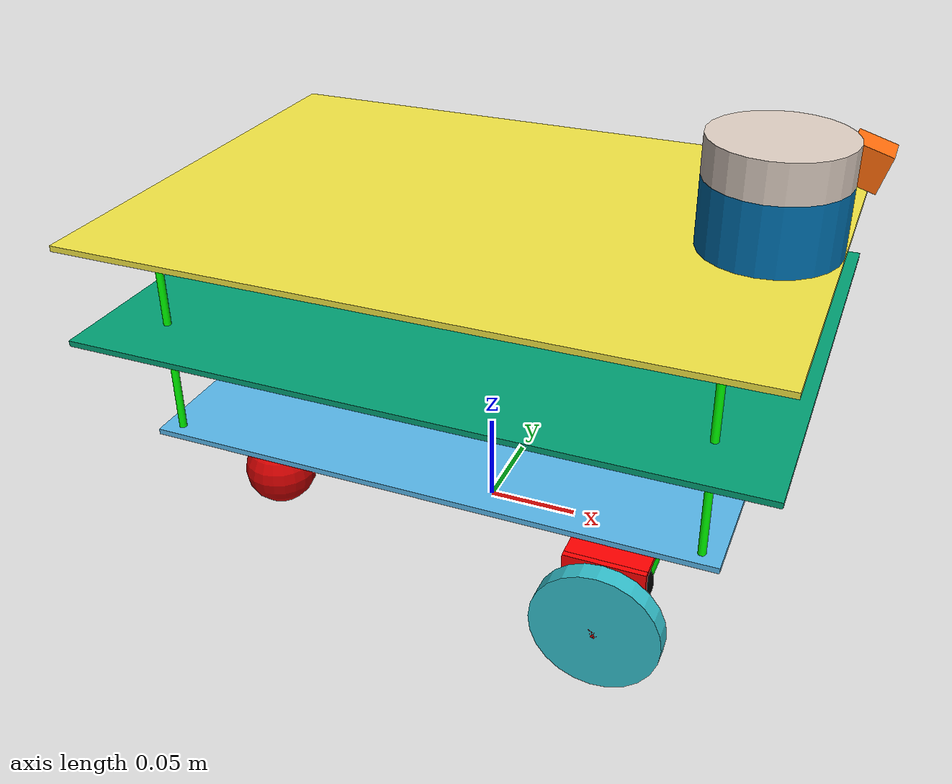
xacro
<?xml version="1.0"?>
<robot name="twirtee" xmlns:xacro="http://www.ros.org/wiki/xacro">

<!-- (C) Eric JENN 2019 -->
<!-- To generate the URDF: xacro twirtee.xacro > twirtee.urdf -->
<!-- Constants -->

  <xacro:property name="PI" value="3.1415926535897931"/>

<!-- Modeling parameters -->
<!-- [TODO] use actual values -->

  <xacro:property name="floor0Length" 	value="0.30"/>
  <xacro:property name="floor0Width" 	value="0.20"/>
  <xacro:property name="floor0Heigth" 	value="0.003"/>
  <xacro:property name="floor0Mass" 	value="1"/>

  <xacro:property name="spacerRadius" 	value="0.002"/>
  <xacro:property name="spacer01Width" 	value="0.060"/>
  <xacro:property name="spacer01Mass" 	value="1"/>

  <xacro:property name="floor1Length" 	value="0.350"/>
  <xacro:property name="floor1Width" 	value="0.250"/>
  <xacro:property name="floor1Heigth" 	value="0.003"/>
  <xacro:property name="floor1Mass" 	value="1"/>

  <xacro:property name="spacer12Width" 	value="0.050"/>
  <xacro:property name="spacer12Mass" 	value="1"/>

  <xacro:property name="floor2Length" 	value="0.350"/>
  <xacro:property name="floor2Width" 	value="0.250"/>
  <xacro:property name="floor2Heigth" 	value="0.003"/>
  <xacro:property name="floor2Mass" 	value="1"/>

  <xacro:property name="casterRadius" 	value="0.1"/>
  <xacro:property name="casterMass" 	value="5"/>

  <xacro:property name="wheelWidth" 	value="0.010"/>
  <xacro:property name="wheelRadius" 	value="0.032"/>
  <xacro:property name="wheelMass" 		value="5"/>

  <xacro:property name="wheelOffset" 	value="0.007"/>

  <xacro:property name="wheelFixtOffset" 	value="0.030"/>
  <xacro:property name="wheelFloor0Offset" 	value="${wheelFixtOffset+motorFixtHHeigth}"/>
  <xacro:property name="wheelXOffset" 	value="0.05"/>

  <xacro:property name="motorAxisWidth" 	value="0.0145"/>
  <xacro:property name="motorAxisRadius" 	value="0.003"/>
  <xacro:property name="motorAxisMass" 		value="5"/>

  <xacro:property name="motorC1Width" 	value="0.0215"/>
  <xacro:property name="motorC1Radius" 	value="0.0185"/>
  <xacro:property name="motorC1Mass" 		value="5"/>
  <xacro:property name="motorC2Width" 	value="0.0230"/>
  <xacro:property name="motorC2Radius" 	value="0.0164"/>
  <xacro:property name="motorC2Mass" 		value="5"/>
  <xacro:property name="motorC3Width" 	value="0.006"/>
  <xacro:property name="motorC3Radius" 	value="0.006"/>
  <xacro:property name="motorC3Mass" 		value="5"/>

  <xacro:property name="motorFixtVLength" 	value="0.045"/>
  <xacro:property name="motorFixtVWidth" 	value="0.040"/>
  <xacro:property name="motorFixtVHeigth" 	value="0.003"/>
  <xacro:property name="motorFixtVMass" 	value="1"/>

  <xacro:property name="motorFixtVOffset"	value="0.002"/>

  <xacro:property name="motorFixtHLength" 	value="0.040"/>
  <xacro:property name="motorFixtHWidth" 	value="0.040"/>
  <xacro:property name="motorFixtHHeigth" 	value="0.003"/>
  <xacro:property name="motorFixtHMass" 	value="1"/>

  <xacro:property name="casterRadius" 	value="0.02"/>

  <xacro:property name="camLength" 	value="0.02"/>
  <xacro:property name="camWidth" 	value="0.02"/>
  <xacro:property name="camHeigth" 	value="0.02"/>
  <xacro:property name="camMass" 	value="0.5"/>
  <xacro:property name="camPitch" 	value="0.3"/>
  <xacro:property name="camXOffset" 	value="0.175"/>
  <xacro:property name="camYOffset" 	value="0.05"/>

  <xacro:property name="lidarBaseRadius" 	value="0.035"/>
  <xacro:property name="lidarBaseLength" 	value="0.035"/>
  <xacro:property name="lidarBaseMass" 		value="0.5"/>
  <xacro:property name="lidarBaseXOffset" 	value="0.14"/>

  <xacro:property name="lidarHeadRadius" 	value="0.035"/>
  <xacro:property name="lidarHeadLength" 	value="0.020"/>
  <xacro:property name="lidarHeadMass" 		value="0.5"/>

  <xacro:property name="imuLength" 	value="0.010"/>
  <xacro:property name="imuWidth" 	value="0.005"/>
  <xacro:property name="imuHeigth" 	value="0.010"/>
  <xacro:property name="imuMass" 	value="1"/>

  <xacro:include filename="$(find twirtee_description)/urdf/materials.xacro" />
  <xacro:include filename="$(find twirtee_description)/urdf/macros.xacro" />

<!-- Links and joints definition -->

  <link name="footprint" />

<!-- floor 0 -->

  <joint name="base_joint" type="fixed">
    <parent link="footprint"/>
    <child link="floor0"/>
      <origin xyz="0 0 ${wheelRadius+wheelOffset+motorFixtVOffset+motorFixtVLength/2.0+motorFixtHHeigth+floor0Heigth/2.0}" rpy="0 0 0" />
  </joint>

  <link name="floor0">
    <visual>
      <geometry>
		<box size="${floor0Length} ${floor0Width} ${floor0Heigth}" />
      </geometry>
    </visual>
	<f0Pilar tX="-1.0" tY="-1.0" />
	<f0Pilar tX="1.0" tY="-1.0" />
	<f0Pilar tX="-1.0" tY="1.0" />
	<f0Pilar tX="1.0" tY="1.0" />
  </link>

<!-- floor 1 -->

  <joint name="f0f1_joint" type="fixed">
    <parent link="floor0"/>
    <child link="floor1"/>
	<origin xyz=" 0.0 0.0 ${spacer01Width+floor1Heigth/2}" rpy="0 0 0" />
  </joint>

  <link name="floor1">
    <visual>
      <origin xyz="0 0 0" rpy="0 0 0" />
      <geometry>
		<box size="${floor1Length} ${floor1Width} ${floor1Heigth}" />
      </geometry>
    </visual>
	<f1Pilar tX="-1.0" tY="-1.0" />
	<f1Pilar tX="1.0" tY="-1.0" />
	<f1Pilar tX="-1.0" tY="1.0" />
	<f1Pilar tX="1.0" tY="1.0" />
  </link>

<!-- floor 2 -->

  <joint name="f1f2_joint" type="fixed">
    <parent link="floor1"/>
    <child link="floor2"/>
	<origin xyz=" 0.0 0.0 ${spacer12Width+floor1Heigth/2}" rpy="0 0 0" />
  </joint>

  <link name="floor2">
    <visual>
      <origin xyz="0 0 0" rpy="0 0 0" />
      <geometry>
		<box size="${floor2Length} ${floor2Width} ${floor2Heigth}" />
      </geometry>
    </visual>
  </link>

<!--          WHEELS            -->

<wheel lr="left" tY="1"/>
<wheel lr="right" tY="-1"/>
<caster lr="left" tY="1"/>
<caster lr="right" tY="-1"/>

<!--          MOTORS            -->

<motor lr="left" tY="1"/>
<motor lr="right" tY="-1"/>

<!--          CAMERA            -->

  <joint name="f2_cam_joint" type="fixed">
    <parent link="floor2"/>
    <child link="cam"/>
	<origin xyz=" ${camXOffset} ${camYOffset} ${floor2Heigth/2+camHeigth/2.0+0.02}" rpy="0 ${camPitch} 0" />
  </joint>

  <link name="cam">
    <visual>
      <origin xyz="0 0 0" rpy="0 0 0" />
      <geometry>
		<box size="${camLength} ${camWidth} ${camHeigth}" />
      </geometry>
	  <material name="orange">
		  <color rgba="${255/255} ${108/255} ${10/255} 1.0"/>
	  </material>
    </visual>
  </link>

<!--          IMU            -->

  <joint name="f1_imu_joint" type="fixed">
    <parent link="floor1"/>
    <child link="imu"/>
	<origin xyz=" 0.0 0.0 ${floor1Heigth/2+imuHeigth/2.0}" rpy="0 0 0" />
  </joint>

  <link name="imu">
    <visual>
      <origin xyz="0 0 0" rpy="0 0 0" />
      <geometry>
		<box size="${imuLength} ${imuWidth} ${imuHeigth}" />
      </geometry>
	  <material name="orange">
		  <color rgba="${255/255} ${108/255} ${10/255} 1.0"/>
	  </material>
    </visual>
  </link>

<!--           LIDAR           -->

  <joint name="f2_lidarbase_joint" type="fixed">
    <parent link="floor2"/>
    <child link="lidarbase"/>
	<origin xyz=" ${lidarBaseXOffset} 0.0 ${floor2Heigth/2+lidarBaseLength/2.0}" rpy="0 0 0" />
  </joint>

  <link name="lidarbase">
    <visual>
      <origin xyz="0 0 0" rpy="0 0 0" />
      <geometry>
		<cylinder radius="${lidarBaseRadius}" length="${lidarBaseLength}" />
      </geometry>
    </visual>
  </link>

  <joint name="lidarbase_head_joint" type="continuous">
	<axis xyz="0.0 0.0 1.0" />
    <parent link="lidarbase"/>
    <child link="lidarhead"/>
	<origin xyz=" 0.0 0.0 ${lidarBaseLength/2.0+lidarHeadLength/2.0}" rpy="0 0 0" />
  </joint>

  <link name="lidarhead">
    <visual>
      <origin xyz="0 0 0" rpy="0 0 0" />
      <geometry>
		<cylinder radius="${lidarHeadRadius}" length="${lidarHeadLength}"/>
      </geometry>
	  <material name="brown">
		  <color rgba="${222/255} ${207/255} ${195/255} 1.0"/>
	  </material>
    </visual>
  </link>

</robot>

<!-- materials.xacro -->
<robot name="mybot" xmlns:xacro="http://www.ros.org/wiki/xacro">

	<material name="black"><color rgba="0.0 0.0 0.0 1.0"/></material>
	<material name="blue"><color rgba="0.0 0.0 0.8 1.0"/></material>
	<material name="green"><color rgba="0.0 0.8 0.0 1.0"/></material>
	<material name="grey"><color rgba="0.2 0.2 0.2 1.0"/></material>
	<material name="orange"><color rgba="${255/255} ${108/255} ${10/255} 1.0"/></material>
	<material name="brown"><color rgba="${222/255} ${207/255} ${195/255} 1.0"/></material>
	<material name="red"><color rgba="0.8 0.0 0.0 1.0"/></material>
	<material name="white"><color rgba="1.0 1.0 1.0 1.0"/></material>

</robot>

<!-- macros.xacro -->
<robot name="mybot_macros" xmlns:xacro="http://www.ros.org/wiki/xacro">
        <!-- Put here the robot description -->

<!-- HELPER EXPRESSIONS  -->
  <xacro:macro name="cylinder_inertia" params="m r h">
    <inertia ixx="${m * (3 * r * r + h * h) / 12}" ixy="0" ixz="0"
      iyy="${m * (3 * r * r + h * h) / 12}" iyz="0"
      izz="${m * r * r / 2}"
    />
  </xacro:macro>

  <xacro:macro name="box_inertia" params="m x y z">
    <inertia ixx="${m * (y * y + z * z) / 12}" ixy="0" ixz="0"
      iyy="${m * (x * x + z * z) / 12}" iyz="0"
      izz="${m * (x * x + z * z) / 12}"
    />
  </xacro:macro>

  <xacro:macro name="sphere_inertia" params="m r">
    <inertia ixx="${2 * m * r * r / 5}" ixy="0" ixz="0"
      iyy="${2 * m * r * r / 5}" iyz="0"
      izz="${2 * m * r * r / 5}"
    />
  </xacro:macro>

<!--      WHEELS         -->
<xacro:macro name="wheel" params="lr tY">

<link name="${lr}_wheel">
  <visual>
    <origin xyz="0 0 0" rpy="0 ${PI/2} ${PI/2}" />
    <geometry>
      <cylinder length="${wheelWidth}" radius="${wheelRadius}"/>
    </geometry>
    <material name="cyan"/>
  </visual>
  <visual>
    <origin xyz="0 ${motorAxisWidth/2.0-wheelWidth/2.0} 0 " rpy="0 ${PI/2} ${PI/2}" />
    <geometry>
      <cylinder length="${motorAxisWidth}" radius="${motorAxisRadius}"/>
    </geometry>
    <material name="red">
		<color rgba="1.0 0.0 0.0 1.0"/>
	</material>
  </visual>
</link>

<joint name="${lr}_motor_${lr}wheel_joint" type="continuous">
  <parent link="${lr}_motor"/>
  <child link="${lr}_wheel"/>
  <origin xyz="0 ${-motorC1Width/2.0-motorC3Width-motorFixtVHeigth} ${-wheelOffset}" rpy="0 0 0" />
  <axis xyz="0 1 0" rpy="0 0 0" />
  <limit effort="100" velocity="100"/>
  <joint_properties damping="0.0" friction="0.0"/>
</joint>

</xacro:macro>

<!--   CASTER WHEELS     -->

<xacro:macro name="caster" params="lr tY">
<link name="${lr}_caster">
   <visual>
    <origin xyz="0 0 0" rpy="0 0 0"/>
    <geometry>
      <sphere radius="${casterRadius}"/>
    </geometry>
    <material name="red"/>
  </visual>
</link>

<joint name="floor0_${lr}_caster_joint" type="fixed">
	<origin xyz="${-floor0Length/2.0+0.04} ${tY*0.05} ${-floor0Heigth/2-motorFixtVLength/2.0-motorFixtVOffset-wheelOffset-wheelRadius+casterRadius}" rpy="0 0 0" />
  <parent link="floor0"/>
  <child link="${lr}_caster"/>
</joint>

</xacro:macro>

<!--      MOTORS         -->

<xacro:macro name="motor" params="lr tY">

<link name="${lr}_motor">
  <visual>
    <origin xyz="0 0 0" rpy="0 ${PI/2} ${PI/2}" />
    <geometry>
      <cylinder length="${motorC1Width}" radius="${motorC1Radius}"/>
    </geometry>
    <material name="black"/>
  </visual>
  <visual>
    <origin xyz="0 ${motorC1Width/2+motorC2Width/2.0} 0" rpy="0 ${PI/2} ${PI/2}" />
    <geometry>
      <cylinder length="${motorC2Width}" radius="${motorC2Radius}"/>
    </geometry>
    <material name="green">
		<color rgba="0.0 1.0 0.0 1.0"/>
	</material>
  </visual>
  <visual>
    <origin xyz="0 ${-motorC1Width/2.0-motorC3Width/2.0} ${-wheelOffset}" rpy="0 ${PI/2} ${PI/2}" />
    <geometry>
      <cylinder length="${motorC3Width}" radius="${motorC3Radius}"/>
    </geometry>
    <material name="blue">
		<color rgba="0.0 0.0 1.0 1.0"/>
	</material>
  </visual>
  <visual>
    <origin xyz="0 ${-motorC1Width/2.0-motorFixtVHeigth/2.0} ${motorFixtVOffset}" rpy="0 ${PI/2} ${PI/2}" />
    <geometry>
		<box size="${motorFixtVLength} ${motorFixtVWidth} ${motorFixtVHeigth}" />
    </geometry>
    <material name="red">
		<color rgba="1.0 0.0 0.0 1.0"/>
	</material>
  </visual>
  <visual>
    <origin xyz="0 ${-motorC1Width/2.0+motorFixtHLength/2.0} ${motorFixtVLength/2.0-motorFixtHHeigth/2.0+motorFixtVOffset}" rpy="0 ${PI/2} ${PI/2}" />
    <geometry>
		<box size="${motorFixtHHeigth} ${motorFixtHWidth} ${motorFixtHLength}" />
    </geometry>
    <material name="red">
		<color rgba="1.0 0.0 0.0 1.0"/>
	</material>
  </visual>
</link>

<joint name="l0_${lr}_motor_joint" type="fixed">
  <parent link="floor0"/>
  <child link="${lr}_motor"/>
  <origin xyz="${floor0Length/2-wheelXOffset} ${tY*floor0Width/2} ${-floor0Heigth/2-motorFixtVLength/2.0-motorFixtVOffset}" rpy="0 0 ${(tY+1)*PI/2.0}" />
  <axis xyz="0 1 0" rpy="0 0 0" />
  <limit effort="100" velocity="100"/>
  <joint_properties damping="0.0" friction="0.0"/>
</joint>

</xacro:macro>

<!--      Pilars         -->
<xacro:macro name="f0Pilar" params="tX tY">
  <visual>
    <origin xyz="${tX*0.14} ${tY*0.0925} ${floor0Heigth/2.0+spacer01Width/2.0}" rpy="0 0 0" />
    <geometry>
      <cylinder length="${spacer01Width}" radius="${spacerRadius}"/>
    </geometry>
    <material name="green">
		<color rgba="0.0 1.0 0.0 1.0"/>
	</material>
  </visual>
</xacro:macro>

<xacro:macro name="f1Pilar" params="tX tY">
  <visual>
    <origin xyz="${tX*0.14} ${tY*0.0925} ${floor1Heigth/2.0+spacer12Width/2.0}" rpy="0 0 0" />
    <geometry>
      <cylinder length="${spacer12Width}" radius="${spacerRadius}"/>
    </geometry>
    <material name="green">
		<color rgba="0.0 1.0 0.0 1.0"/>
	</material>
  </visual>
</xacro:macro>

</robot>
